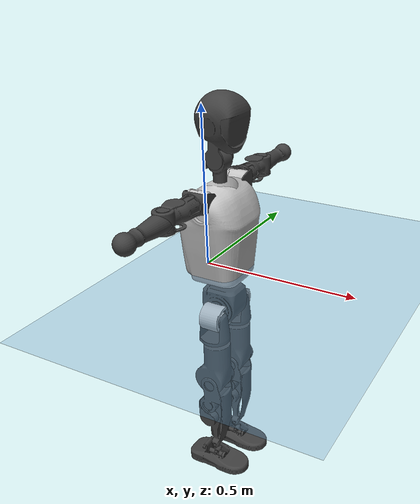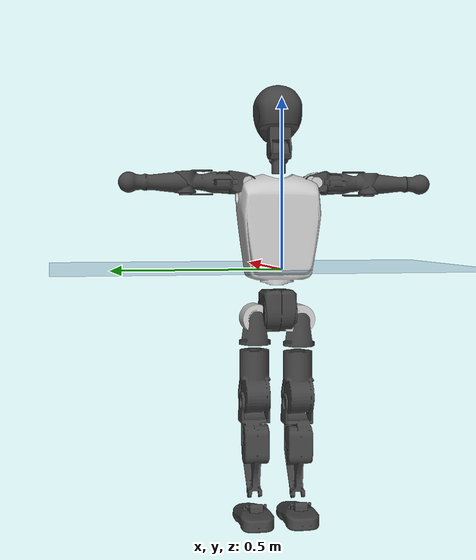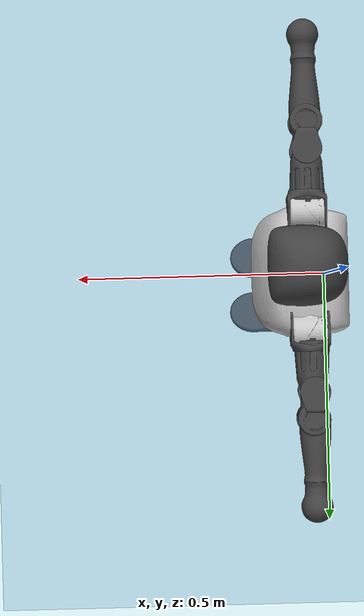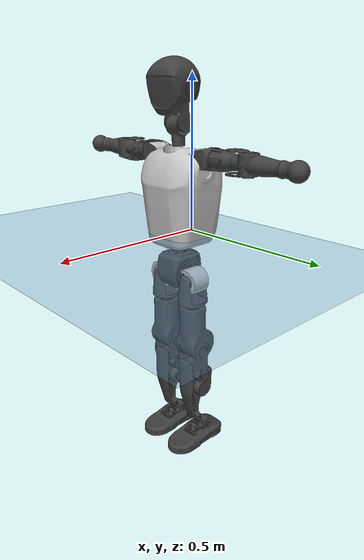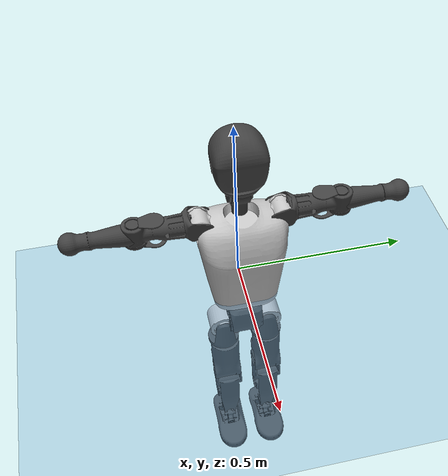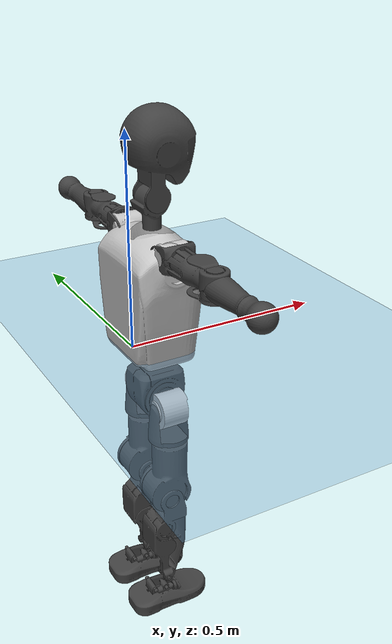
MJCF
<mujoco model="T1">
  <compiler angle="radian" assetdir="assets" balanceinertia="true" inertiafromgeom="false"/>

  <option timestep="0.005" density="1.2" viscosity="2e-05"/>

  <size nkey="1"/>

  <visual>
    <quality shadowsize="8192"/>
    <map shadowclip="0.5"/>
  </visual>

  <default>
    <default class="/">
      <joint armature="0.01" damping="0.01" frictionloss="0.1"/>
      <geom contype="0" conaffinity="0" group="1" solref="-1000 -80"/>
      <site size="0.01 0.005 0.005" group="5"/>
      <general forcelimited="true" biastype="affine" gainprm="25" biasprm="0 -25 -0.6"/>
      <default class="t1">
        <geom rgba="0.25 0.25 0.25 1"/>
        <default class="visual">
          <geom type="mesh" group="2"/>
        </default>
        <default class="collision">
          <geom group="3"/>
        </default>
        <default class="foot">
          <geom size="0.1115 0.05 0.015" type="box" condim="6" group="4" priority="1" solimp="0.015 1 0.015"/>
        </default>
        <default class="reward_collision_sphere">
          <geom group="5" rgba="1 0 0 1"/>
        </default>
      </default>
    </default>
  </default>

  <asset>
    <texture type="skybox" colorspace="auto" name="//unnamed_texture_0" builtin="gradient" rgb1="0.95 0.95 0.95" rgb2="0.95 0.95 0.95" width="100" height="600"/>
    <texture type="2d" colorspace="auto" name="texplane" builtin="checker" rgb1="0.345 0.575 0.748" rgb2="0.345 0.575 0.748" markrgb="1 1 1" width="512" height="512"/>
    <material name="MatPlane" class="/" texture="texplane" texuniform="true" texrepeat="2 2" specular="0.9"/>
    <mesh name="Trunk" class="/" file="Trunk.stl"/>
    <mesh name="H1" class="/" file="H1.stl"/>
    <mesh name="H2" class="/" file="H2.stl"/>
    <mesh name="AL1" class="/" file="AL1.stl"/>
    <mesh name="AL2" class="/" file="AL2.stl"/>
    <mesh name="AL3" class="/" file="AL3.stl"/>
    <mesh name="left_hand_link" class="/" file="left_hand_link.stl"/>
    <mesh name="AR1" class="/" file="AR1.stl"/>
    <mesh name="AR2" class="/" file="AR2.stl"/>
    <mesh name="AR3" class="/" file="AR3.stl"/>
    <mesh name="right_hand_link" class="/" file="right_hand_link.stl"/>
    <mesh name="Waist" class="/" file="Waist.stl"/>
    <mesh name="Hip_Pitch_Left" class="/" file="Hip_Pitch_Left.stl"/>
    <mesh name="Hip_Roll_Left" class="/" file="Hip_Roll_Left.stl"/>
    <mesh name="Hip_Yaw_Left" class="/" file="Hip_Yaw_Left.stl"/>
    <mesh name="Shank_Left" class="/" file="Shank_Left.stl"/>
    <mesh name="Ankle_Cross_Left" class="/" file="Ankle_Cross_Left.stl"/>
    <mesh name="left_foot_link" class="/" file="left_foot_link.stl"/>
    <mesh name="Hip_Pitch_Right" class="/" file="Hip_Pitch_Right.stl"/>
    <mesh name="Hip_Roll_Right" class="/" file="Hip_Roll_Right.stl"/>
    <mesh name="Hip_Yaw_Right" class="/" file="Hip_Yaw_Right.stl"/>
    <mesh name="Shank_Right" class="/" file="Shank_Right.stl"/>
    <mesh name="Ankle_Cross_Right" class="/" file="Ankle_Cross_Right.stl"/>
    <mesh name="right_foot_link" class="/" file="right_foot_link.stl"/>
  </asset>

  <worldbody>
    <geom name="floor" class="/" size="100 100 0.125" type="plane" group="0" material="MatPlane"/>
    <light name="toplight_shadow" class="/" pos="0 0 5" dir="0.0990148 0.0990148 -0.990148" type="directional" ambient="0.04 0.04 0.04" diffuse="0.55 0.55 0.55" specular="0.12 0.12 0.12"/>
    <light name="toplight_fill" class="/" pos="0 0 5" dir="0.0990148 0.0990148 -0.990148" type="directional" castshadow="false" ambient="0.04 0.04 0.04" diffuse="0.3 0.3 0.3" specular="0.08 0.08 0.08"/>
    <body name="trunk" childclass="t1" pos="0.000297424 0.000805853 0.00218111" quat="1 2.88718e-05 0.000245539 -3.19675e-05">
      <inertial pos="0.0499052 -0.00334846 0.121362" quat="0.999777 -0.00558378 -0.0188711 0.00764376" mass="8.32104" diaginertia="0.0573838 0.0072525 0.112711"/>
      <joint name="//unnamed_joint_0" type="free" armature="0" damping="0" frictionloss="0"/>
      <geom name="//unnamed_geom_1" class="visual" rgba="0.76 0.76 0.76 1" mesh="Trunk"/>
      <geom name="//unnamed_geom_2" class="collision" size="0.0676107 0.0901477 0.135221" pos="0.0546631 0 0.139319" type="box"/>
      <geom name="//unnamed_geom_3" class="reward_collision_sphere" size="0.10367" pos="0.0546631 0 0.116099"/>
      <geom name="//unnamed_geom_4" class="reward_collision_sphere" size="0.0135221" pos="0.0546631 0.053753 0"/>
      <geom name="//unnamed_geom_5" class="reward_collision_sphere" size="0.0135221" pos="0.0546631 -0.053753 0"/>
      <geom name="//unnamed_geom_6" class="reward_collision_sphere" size="0.0135221" pos="0.0546631 0.0676655 0.208978"/>
      <geom name="//unnamed_geom_7" class="reward_collision_sphere" size="0.0135221" pos="0.0546631 -0.0676655 0.208978"/>
      <site name="imu" pos="2.90852e-05 0.00694764 -0.0130774" size="0.00901477"/>
      <camera name="track" pos="0 -1.26478 0" quat="0.707107 0.707107 0 0" mode="trackcom"/>
      <camera name="ego_camera" pos="0.111148 0 0.487616" quat="-0.5 -0.5 0.5 0.5"/>
      <body name="H1" pos="0.0561198 -0.00328169 0.279895" quat="1 0.000489303 0.000183279 -0.000555145">
        <inertial pos="-5.22141e-05 -0.00178359 0.0692323" quat="0.759241 -0.0105054 0.0096194 0.650653" mass="0.313636" diaginertia="0.000142982 2.28636e-05 0.000301517"/>
        <joint name="AAHead_yaw" pos="0 0 0" axis="0.00833325 -0.00899293 0.999925" stiffness="0.00315476" range="-1.51733 1.57486" armature="0.00942367" damping="0" frictionloss="0.0780114"/>
        <geom name="//unnamed_geom_8" class="visual" mesh="H1"/>
        <body name="H2" pos="-0.000177544 -0.00122447 0.0725864" quat="1 3.55136e-05 -0.000158885 -0.000182628">
          <inertial pos="0.00378894 0.00290698 0.116649" quat="0.988307 0.114453 -0.0746211 -0.067686" mass="0.462824" diaginertia="0.00127359 0.000189692 0.00370161"/>
          <joint name="Head_pitch" pos="0 0 0" axis="-0.00948496 -0.99994 -0.00555988" range="-1.19707 0.336526" armature="0.00846553" damping="0.0125753" frictionloss="0.0861022"/>
          <geom name="//unnamed_geom_9" class="visual" mesh="H2"/>
          <geom name="//unnamed_geom_10" class="collision" size="0.0721181" pos="0.00911052 0 0.127709"/>
          <geom name="//unnamed_geom_11" class="reward_collision_sphere" size="0.0811329" pos="0.018221 0 0.116099"/>
        </body>
      </body>
      <body name="AL1" pos="0.050921 0.0652936 0.251984" quat="1 -0.000542752 0.000535801 0.000215756">
        <inertial pos="0.0013317 0.0255626 0.000201609" quat="0.5035 0.491761 -0.506426 0.498188" mass="0.373162" diaginertia="0.00080428 0.000127077 0.000607136"/>
        <joint name="Left_Shoulder_Pitch" pos="0 0 0" axis="0.00710205 0.999889 -0.0131337" range="-3.29566 1.22518" armature="0.00776024" damping="0" frictionloss="0.0776683"/>
        <geom name="//unnamed_geom_12" class="visual" rgba="0.76 0.76 0.76 1" mesh="AL1"/>
        <body name="AL2" pos="-0.0013433 0.0279052 0.000853259" quat="1 -0.00018511 -0.00044752 -5.89101e-05">
          <inertial pos="0.00344113 0.0267942 -0.00037836" quat="0.490259 0.521282 -0.478292 0.509066" mass="0.116876" diaginertia="0.000250143 3.47156e-05 0.000369805"/>
          <joint name="Left_Shoulder_Roll" pos="0 0 0" axis="-0.999979 -0.00502756 -0.00398741" range="-1.56819 1.71733" armature="0.0101556" damping="0.0182781" frictionloss="0.0908939"/>
          <geom name="//unnamed_geom_13" class="visual" mesh="AL2"/>
          <body name="AL3" pos="-0.00219717 0.0355701 -0.000570609" quat="1 -1.97558e-05 -0.000100525 0.000636129">
            <inertial pos="0.000545709 0.0547359 0.0024336" quat="0.707036 0.707177 -0.00103944 0.000814079" mass="0.745941" diaginertia="0.00785964 0.00128095 0.00129032"/>
            <joint name="Left_Elbow_Pitch" pos="0 0 0" axis="0.00987733 -0.999949 -0.00212026" stiffness="0.0123839" range="-2.25216 2.27121" armature="0.00977018" damping="0.0108389" frictionloss="0.0905317"/>
            <geom name="//unnamed_geom_14" class="visual" mesh="AL3"/>
            <geom name="//unnamed_geom_15" class="collision" size="0.0270443 0.0676107" pos="0 0.0316194 0" quat="0.707105 0.707108 0 0" type="cylinder"/>
            <geom name="//unnamed_geom_16" class="reward_collision_sphere" size="0.0324532"/>
            <body name="left_hand_link" pos="-0.00240695 0.0955946 -0.000665923" quat="1 -1.16719e-05 -0.000122912 -1.63964e-05">
              <inertial pos="-0.000590894 0.0716437 -0.000621909" quat="0.704907 0.709274 -0.00305701 -0.00519121" mass="0.232501" diaginertia="0.00518121 0.000848217 0.000447291"/>
              <joint name="Left_Elbow_Yaw" pos="0 0 0" axis="-0.00223448 0.00838938 0.999962" stiffness="0.0117513" range="-2.49697 0.00314295" armature="0.00824219" damping="0.00416477" frictionloss="0.102806"/>
              <geom name="//unnamed_geom_17" class="visual" mesh="left_hand_link"/>
              <geom name="//unnamed_geom_18" class="collision" size="0.0270443 0.0788792" pos="0 0.0822104 0" quat="0.707105 0.707108 0 0" type="cylinder"/>
              <geom name="//unnamed_geom_19" class="reward_collision_sphere" size="0.0450738"/>
              <geom name="//unnamed_geom_20" class="reward_collision_sphere" size="0.0315517" pos="0 0.0695627 0"/>
              <geom name="//unnamed_geom_21" class="reward_collision_sphere" size="0.0315517" pos="0 0.135963 0"/>
            </body>
          </body>
        </body>
      </body>
      <body name="AR1" pos="0.0504928 -0.0649107 0.25295" quat="1 9.25007e-05 0.000527672 -0.000101023">
        <inertial pos="-0.000538882 -0.0300433 -0.00125722" quat="0.50512 0.487726 -0.507522 0.499399" mass="0.40197" diaginertia="0.000868215 0.000126235 0.000625087"/>
        <joint name="Right_Shoulder_Pitch" pos="0 0 0" axis="0.00025961 -1 0.000408024" range="-1.22267 3.32549" armature="0.00862024" damping="0.0201728" frictionloss="0.0878748"/>
        <geom name="//unnamed_geom_22" class="visual" rgba="0.76 0.76 0.76 1" mesh="AR1"/>
        <body name="AR2" pos="-0.000341205 -0.0308155 0.00127692" quat="1 4.59268e-06 -2.71664e-07 -3.80659e-09">
          <inertial pos="0.00576211 -0.0236786 0.000343292" quat="0.516535 0.492177 -0.5117 0.478661" mass="0.11942" diaginertia="0.000253836 3.40331e-05 0.000380639"/>
          <joint name="Right_Shoulder_Roll" pos="0 0 0" axis="-0.999974 0.00671703 -0.00242919" range="-1.74651 1.61703" armature="0.00876141" damping="0" frictionloss="0.0985314"/>
          <geom name="//unnamed_geom_23" class="visual" mesh="AR2"/>
          <body name="AR3" pos="-0.0015898 -0.0374171 -0.00329162" quat="0.999999 0.000176549 -0.000673152 0.00115894">
            <inertial pos="-0.000585383 -0.0519521 -0.00133535" quat="0.715941 0.698124 0.00594794 -0.00398946" mass="0.758665" diaginertia="0.00800596 0.00127249 0.00129226"/>
            <joint name="Right_Elbow_Pitch" pos="0 0 0" axis="0.00330427 0.999994 -0.000862712" stiffness="0.00744502" range="-2.31299 2.23734" armature="0.00928982" damping="0.000964979" frictionloss="0.0882173"/>
            <geom name="//unnamed_geom_24" class="visual" mesh="AR3"/>
            <geom name="//unnamed_geom_25" class="collision" size="0.0270443 0.0676107" pos="0 -0.0316194 0" quat="0.707105 0.707108 0 0" type="cylinder"/>
            <geom name="//unnamed_geom_26" class="reward_collision_sphere" size="0.0324532"/>
            <body name="right_hand_link" pos="0.000369749 -0.0942394 -0.000490825" quat="1 -0.000155884 -2.53301e-05 -7.9122e-05">
              <inertial pos="-0.000997333 -0.0698929 0.000591066" quat="0.713068 0.701036 -0.00271461 0.00869325" mass="0.231589" diaginertia="0.00494826 0.000792167 0.000434357"/>
              <joint name="Right_Elbow_Yaw" pos="0 0 0" axis="-0.00202632 -0.0130982 0.999912" range="0.0494992 2.46752" armature="0.00883269" damping="0.00473165" frictionloss="0.092854"/>
              <geom name="//unnamed_geom_27" class="visual" mesh="right_hand_link"/>
              <geom name="//unnamed_geom_28" class="collision" size="0.0270443 0.0788792" pos="0 -0.0822104 0" quat="0.707105 0.707108 0 0" type="cylinder"/>
              <geom name="//unnamed_geom_29" class="reward_collision_sphere" size="0.0450738"/>
              <geom name="//unnamed_geom_30" class="reward_collision_sphere" size="0.0315517" pos="0 -0.0695627 0"/>
              <geom name="//unnamed_geom_31" class="reward_collision_sphere" size="0.0315517" pos="0 -0.135963 0"/>
            </body>
          </body>
        </body>
      </body>
      <body name="Waist" pos="0.0580513 -0.000930166 -0.132596" quat="0.999999 0.000378139 0.00129167 5.24115e-06">
        <inertial pos="0.00175812 -0.00276492 0.00903994" quat="0.983742 0.000517898 -0.179556 0.00345755" mass="1.95591" diaginertia="0.00339782 0.000539635 0.00976044"/>
        <joint name="Waist" pos="0 0 0" axis="-0.00565036 0.0133165 0.999895" stiffness="0.00571939" range="-1.55218 1.58165" armature="0.0100035" damping="0" frictionloss="0.0873131"/>
        <geom name="//unnamed_geom_32" class="visual" mesh="Waist"/>
        <body name="Hip_Pitch_Left" pos="0.00423776 0.0665741 0.00157703" quat="0.999999 0.000484953 0.000147743 0.000950299">
          <inertial pos="-0.000147629 -0.00707089 -0.0218008" quat="0.972915 0.229948 0.0232195 -0.00456626" mass="0.746546" diaginertia="0.0010781 0.00014263 0.00246235"/>
          <joint name="Left_Hip_Pitch" pos="0 0 0" axis="0.00774208 0.999908 0.0111392" stiffness="0.0019583" range="-1.80619 1.61338" armature="0.00811366" damping="0.00817038" frictionloss="0.10172"/>
          <geom name="//unnamed_geom_33" class="visual" rgba="0.76 0.76 0.76 1" mesh="Hip_Pitch_Left"/>
          <body name="Hip_Roll_Left" pos="0.00100828 0.0013283 -0.0208207" quat="1 0.00022494 -0.000111546 8.93595e-06">
            <inertial pos="6.8693e-05 -0.00214275 -0.0607123" quat="0.707531 -0.00628718 -0.00598288 0.706629" mass="0.281685" diaginertia="0.00108271 0.000155727 0.00106725"/>
            <joint name="Left_Hip_Roll" pos="0 0 0" axis="-0.999997 -0.000909079 0.00230258" stiffness="0.000774968" range="-1.61393 0.22004" armature="0.00948155" damping="0.0157748" frictionloss="0.0934418"/>
            <geom name="//unnamed_geom_34" class="visual" mesh="Hip_Roll_Left"/>
            <geom name="//unnamed_geom_35" class="reward_collision_sphere" size="0.0495812"/>
            <body name="Hip_Yaw_Left" pos="-0.000926491 0.00165983 -0.0939967" quat="1 0.000335059 -0.000209626 -0.00017574">
              <inertial pos="-0.00541053 -0.00137667 -0.10649" quat="0.695954 -0.032649 -0.0298958 0.71672" mass="1.57596" diaginertia="0.0153561 0.00251862 0.00551028"/>
              <joint name="Left_Hip_Yaw" pos="0 0 0" axis="-0.00810362 -0.00961968 -0.999921" range="-0.978872 0.994948" armature="0.00903084" damping="0.000255804" frictionloss="0.102696"/>
              <geom name="//unnamed_geom_36" class="visual" mesh="Hip_Yaw_Left"/>
              <geom name="//unnamed_geom_37" class="collision" size="0.0450738 0.0721181" type="cylinder"/>
              <body name="Shank_Left" pos="-0.00867685 0.000247818 -0.15638" quat="1 9.73548e-05 0.00029183 0.000167251">
                <inertial pos="-0.00372464 -0.00138987 -0.144966" quat="0.997873 0.00312034 -0.0236405 0.0606677" mass="1.24438" diaginertia="0.0215571 0.00343869 0.00403706"/>
                <joint name="Left_Knee_Pitch" pos="0 0 0" axis="-0.00173491 0.999998 0.000753952" stiffness="0.0101439" range="0.0541739 2.39529" armature="0.00855569" damping="0.0172658" frictionloss="0.0887436"/>
                <geom name="//unnamed_geom_38" class="visual" mesh="Shank_Left"/>
                <geom name="//unnamed_geom_39" class="collision" size="0.0450738 0.0676107" pos="0 0 -0.139319" type="cylinder"/>
                <geom name="//unnamed_geom_40" class="reward_collision_sphere" size="0.058596"/>
                <body name="Ankle_Cross_Left" pos="-0.00127382 0.000434414 -0.325002" quat="0.999999 -0.000881982 0.00075036 0.000992006">
                  <inertial pos="-0.000950633 0.00189212 -0.0121133" quat="0.44584 0.551725 0.54861 0.442553" mass="0.0526405" diaginertia="1.82848e-05 2.43486e-06 2.31981e-05"/>
                  <joint name="Left_Ankle_Pitch" pos="0 0 0" axis="-0.0122903 0.999858 -0.0115351" stiffness="0.00985055" range="-0.913881 0.394664" armature="0.00869572" damping="0.0226767" frictionloss="0.0793025"/>
                  <geom name="//unnamed_geom_41" class="visual" mesh="Ankle_Cross_Left"/>
                  <body name="left_foot_link" pos="-0.0014907 0.00414251 -0.0164824" quat="1 -6.32974e-05 0.000404016 3.44826e-05">
                    <inertial pos="0.00210419 0.00194881 -0.00984547" quat="-0.0114073 0.623963 0.00547618 0.781351" mass="0.508201" diaginertia="0.00172126 0.000255644 0.0048882"/>
                    <joint name="Left_Ankle_Roll" pos="0 0 0" axis="-0.999888 -0.0130382 0.00736008" stiffness="0.00796001" range="-0.488398 0.452897" armature="0.0089511" damping="0.010256" frictionloss="0.10082"/>
                    <geom name="//unnamed_geom_42" class="visual" mesh="left_foot_link"/>
                    <geom name="left_foot" class="foot" size="0.100648 0.0521905 0.0128227" pos="0.00911052 0 -0.0174148"/>
                    <geom name="//unnamed_geom_44" class="reward_collision_sphere" size="0.0468768" pos="0.00911052 0 -0.0174148"/>
                    <geom name="//unnamed_geom_45" class="reward_collision_sphere" size="0.0270443" pos="0.0865499 -0.0145449 -0.0174148"/>
                    <geom name="//unnamed_geom_46" class="reward_collision_sphere" size="0.0270443" pos="-0.0637736 -0.0145449 -0.0174148"/>
                    <site name="left_foot" class="foot" pos="0.00911052 0 -0.0174148" size="0.00901477"/>
                  </body>
                </body>
              </body>
            </body>
          </body>
        </body>
        <body name="Hip_Pitch_Right" pos="0.00170309 -0.0646693 -0.00166164" quat="1 -2.79239e-05 1.55261e-05 -0.000233541">
          <inertial pos="-0.000836458 0.0053303 -0.0207538" quat="0.975186 -0.221323 0.00275831 -0.0045569" mass="0.697978" diaginertia="0.00109795 0.000141952 0.00253868"/>
          <joint name="Right_Hip_Pitch" pos="0 0 0" axis="0.00686906 -0.999906 -0.01185" range="-1.54531 1.74161" armature="0.00860251" damping="0.0115704" frictionloss="0.0775197"/>
          <geom name="//unnamed_geom_47" class="visual" rgba="0.76 0.76 0.76 1" mesh="Hip_Pitch_Right"/>
          <body name="Hip_Roll_Right" pos="-2.77618e-06 -0.00229189 -0.0250281" quat="1 -2.91808e-05 -0.000115291 -0.000100221">
            <inertial pos="0.000791145 -0.000814112 -0.0646147" quat="0.705194 -0.0023422 -0.00247638 0.709007" mass="0.286748" diaginertia="0.00110275 0.000152802 0.00109114"/>
            <joint name="Right_Hip_Roll" pos="0 0 0" axis="-0.999943 0.00437609 -0.00975456" range="-0.187107 1.56613" armature="0.0091427" damping="0.0171116" frictionloss="0.0805999"/>
            <geom name="//unnamed_geom_48" class="visual" mesh="Hip_Roll_Right"/>
            <geom name="//unnamed_geom_49" class="reward_collision_sphere" size="0.0495812"/>
            <body name="Hip_Yaw_Right" pos="0.00230279 0.00288831 -0.0937838" quat="0.999999 -0.000319613 0.000898535 0.000560572">
              <inertial pos="-0.00592785 0.000136952 -0.1009" quat="0.714289 -0.0435945 -0.0358197 0.697573" mass="1.65789" diaginertia="0.0162493 0.00257011 0.00539061"/>
              <joint name="Right_Hip_Yaw" pos="0 0 0" axis="-0.0114094 -0.0116087 -0.999868" stiffness="0.00274525" range="-1.06075 1.04027" armature="0.00853835" damping="0.0211242" frictionloss="0.0909598"/>
              <geom name="//unnamed_geom_50" class="visual" mesh="Hip_Yaw_Right"/>
              <geom name="//unnamed_geom_51" class="collision" size="0.0450738 0.0721181" type="cylinder"/>
              <body name="Shank_Right" pos="-0.013195 0.00298763 -0.156212" quat="1 0.000358577 0.000160064 -0.000481943">
                <inertial pos="-0.00516286 -0.00113428 -0.145309" quat="0.999221 -0.00420007 -0.0267468 -0.0287143" mass="1.29407" diaginertia="0.0217713 0.00334391 0.00403909"/>
                <joint name="Right_Knee_Pitch" pos="0 0 0" axis="0.00518725 -0.999984 0.00202594" range="-2.28452 0.0490122" armature="0.00898288" damping="0.017444" frictionloss="0.0860328"/>
                <geom name="//unnamed_geom_52" class="visual" mesh="Shank_Right"/>
                <geom name="//unnamed_geom_53" class="collision" size="0.0450738 0.0676107" pos="0 0 -0.139319" type="cylinder"/>
                <geom name="//unnamed_geom_54" class="reward_collision_sphere" size="0.058596"/>
                <body name="Ankle_Cross_Right" pos="-0.00205634 0.00118757 -0.323424" quat="1 0.000487463 0.000190707 -0.000786865">
                  <inertial pos="-0.00494346 -0.000489376 -0.00993429" quat="0.442774 0.549992 0.552849 0.442513" mass="0.0531105" diaginertia="1.79812e-05 2.61874e-06 2.34346e-05"/>
                  <joint name="Right_Ankle_Pitch" pos="0 0 0" axis="0.00507278 -0.99997 0.00580861" range="-0.299883 0.917784" armature="0.00911773" damping="0" frictionloss="0.0813365"/>
                  <geom name="//unnamed_geom_55" class="visual" mesh="Ankle_Cross_Right"/>
                  <body name="right_foot_link" pos="0.00114383 -0.00122791 -0.0118939" quat="0.999999 -0.000920679 -0.000233462 0.000823367">
                    <inertial pos="0.000393821 -0.00259458 -0.0100786" quat="-0.00779469 0.627211 -0.0042178 0.778799" mass="0.505315" diaginertia="0.0016549 0.000236783 0.00438285"/>
                    <joint name="Right_Ankle_Roll" pos="0 0 0" axis="-0.999997 0.00239737 -0.000743295" stiffness="0.00877078" range="-0.459825 0.423403" armature="0.010274" damping="0.00711052" frictionloss="0.0858734"/>
                    <geom name="//unnamed_geom_56" class="visual" mesh="right_foot_link"/>
                    <geom name="right_foot" class="foot" size="0.101233 0.0466043 0.0140397" pos="0.00911052 0 -0.0174148"/>
                    <geom name="//unnamed_geom_58" class="reward_collision_sphere" size="0.0360591"/>
                    <geom name="//unnamed_geom_59" class="reward_collision_sphere" size="0.0270443" pos="0.00911052 0 -0.0174148"/>
                    <geom name="//unnamed_geom_60" class="reward_collision_sphere" size="0.0270443" pos="0.0865499 0.0145449 -0.0174148"/>
                    <geom name="//unnamed_geom_61" class="reward_collision_sphere" size="0.0270443" pos="-0.0637736 0.0145449 -0.0174148"/>
                    <site name="right_foot" class="foot" pos="0.00911052 0 -0.0174148" size="0.00901477"/>
                  </body>
                </body>
              </body>
            </body>
          </body>
        </body>
      </body>
    </body>
  </worldbody>

  <contact>
    <pair class="/" geom1="floor" geom2="left_foot" name="//unnamed_contact_0"/>
    <pair class="/" geom1="floor" geom2="right_foot" name="//unnamed_contact_1"/>
  </contact>

  <actuator>
    <general name="AAHead_yaw" class="/" joint="AAHead_yaw" forcerange="-6.90737 6.90737" gainprm="22.9654" biasprm="0 -22.9654 -0.492555"/>
    <general name="Head_pitch" class="/" joint="Head_pitch" forcerange="-6.86351 6.86351" gainprm="22.9654" biasprm="0 -22.9654 -0.492555"/>
    <general name="Left_Shoulder_Pitch" class="/" joint="Left_Shoulder_Pitch" forcerange="-14.5386 14.5386" gainprm="22.9654" biasprm="0 -22.9654 -0.492555"/>
    <general name="Left_Shoulder_Roll" class="/" joint="Left_Shoulder_Roll" forcerange="-15.9954 15.9954" gainprm="22.9654" biasprm="0 -22.9654 -0.492555"/>
    <general name="Left_Elbow_Pitch" class="/" joint="Left_Elbow_Pitch" forcerange="-16.7982 16.7982" gainprm="22.9654" biasprm="0 -22.9654 -0.492555"/>
    <general name="Left_Elbow_Yaw" class="/" joint="Left_Elbow_Yaw" forcerange="-14.6822 14.6822" gainprm="22.9654" biasprm="0 -22.9654 -0.492555"/>
    <general name="Right_Shoulder_Pitch" class="/" joint="Right_Shoulder_Pitch" forcerange="-16.1066 16.1066" gainprm="22.9654" biasprm="0 -22.9654 -0.492555"/>
    <general name="Right_Shoulder_Roll" class="/" joint="Right_Shoulder_Roll" forcerange="-16.8498 16.8498" gainprm="22.9654" biasprm="0 -22.9654 -0.492555"/>
    <general name="Right_Elbow_Pitch" class="/" joint="Right_Elbow_Pitch" forcerange="-16.6691 16.6691" gainprm="22.9654" biasprm="0 -22.9654 -0.492555"/>
    <general name="Right_Elbow_Yaw" class="/" joint="Right_Elbow_Yaw" forcerange="-17.8134 17.8134" gainprm="22.9654" biasprm="0 -22.9654 -0.492555"/>
    <general name="Waist" class="/" joint="Waist" forcerange="-26.1814 26.1814" gainprm="22.9654" biasprm="0 -22.9654 -0.492555"/>
    <general name="Left_Hip_Pitch" class="/" joint="Left_Hip_Pitch" forcerange="-36.9933 36.9933" gainprm="22.9654" biasprm="0 -22.9654 -0.492555"/>
    <general name="Left_Hip_Roll" class="/" joint="Left_Hip_Roll" forcerange="-28.2747 28.2747" gainprm="22.9654" biasprm="0 -22.9654 -0.492555"/>
    <general name="Left_Hip_Yaw" class="/" joint="Left_Hip_Yaw" forcerange="-27.2728 27.2728" gainprm="22.9654" biasprm="0 -22.9654 -0.492555"/>
    <general name="Left_Knee_Pitch" class="/" joint="Left_Knee_Pitch" forcerange="-58.2181 58.2181" gainprm="22.9654" biasprm="0 -22.9654 -0.492555"/>
    <general name="Left_Ankle_Pitch" class="/" joint="Left_Ankle_Pitch" forcerange="-18.6752 18.6752" gainprm="22.9654" biasprm="0 -22.9654 -0.492555"/>
    <general name="Left_Ankle_Roll" class="/" joint="Left_Ankle_Roll" forcerange="-13.9913 13.9913" gainprm="22.9654" biasprm="0 -22.9654 -0.492555"/>
    <general name="Right_Hip_Pitch" class="/" joint="Right_Hip_Pitch" forcerange="-40.9751 40.9751" gainprm="22.9654" biasprm="0 -22.9654 -0.492555"/>
    <general name="Right_Hip_Roll" class="/" joint="Right_Hip_Roll" forcerange="-24.1933 24.1933" gainprm="22.9654" biasprm="0 -22.9654 -0.492555"/>
    <general name="Right_Hip_Yaw" class="/" joint="Right_Hip_Yaw" forcerange="-24.2582 24.2582" gainprm="22.9654" biasprm="0 -22.9654 -0.492555"/>
    <general name="Right_Knee_Pitch" class="/" joint="Right_Knee_Pitch" forcerange="-57.3226 57.3226" gainprm="22.9654" biasprm="0 -22.9654 -0.492555"/>
    <general name="Right_Ankle_Pitch" class="/" joint="Right_Ankle_Pitch" forcerange="-19.9089 19.9089" gainprm="22.9654" biasprm="0 -22.9654 -0.492555"/>
    <general name="Right_Ankle_Roll" class="/" joint="Right_Ankle_Roll" forcerange="-13.1857 13.1857" gainprm="22.9654" biasprm="0 -22.9654 -0.492555"/>
  </actuator>

  <sensor>
    <gyro site="imu" name="imu_angular_velocity"/>
    <velocimeter site="imu" name="imu_linear_velocity"/>
    <framelinvel objtype="site" objname="left_foot" name="left_foot_global_linear_velocity"/>
    <framelinvel objtype="site" objname="right_foot" name="right_foot_global_linear_velocity"/>
  </sensor>

  <keyframe>
    <key name="home" qpos="0 0 0.6385 1 0 0 0 0 0 0 1.4 0 -0.4 0 -1.4 0 0.4 0 -0.4 0 0 0.8 -0.4 0 0.4 0 0 -0.8 0.4 0"/>
  </keyframe>
</mujoco>
